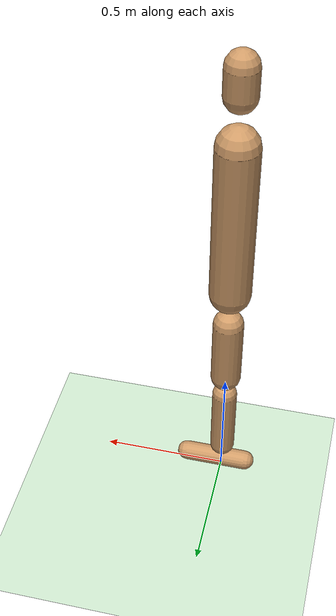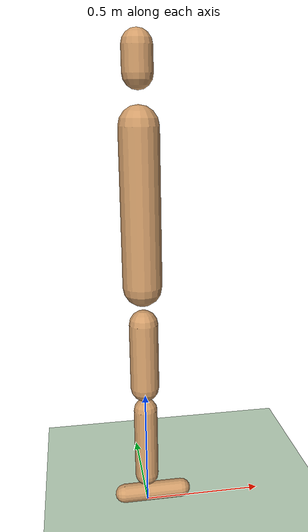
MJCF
<mujoco model="IDP_custom">
  <compiler angle="radian" coordinate="local" inertiafromgeom="false" />
  <default>
    <joint damping="0.0" />
    <geom contype="0" friction="0.0 0.0 0.0" />
  </default>
  <option gravity="0 0 -9.81" integrator="RK4" timestep="0.0083333333" />
  <size nstack="3000" nuser_actuator="10" nuserdata="100" />
  <asset>
    <texture builtin="gradient" height="100" rgb1=".4 .5 .6" rgb2="0 0 0" type="skybox" width="100" />
    <texture builtin="flat" height="1278" mark="cross" markrgb="1 1 1" name="texgeom" random="0.01" rgb1="0.8 0.6 0.4" rgb2="0.8 0.6 0.4" type="cube" width="127" />
    <texture builtin="checker" height="100" name="texplane" rgb1="0 0 0" rgb2="0.8 0.8 0.8" type="2d" width="100" />
    <material name="MatPlane" reflectance="0.5" shininess="1" specular="1" texrepeat="60 60" texture="texplane" />
    <material name="geom" texture="texgeom" texuniform="true" />
  </asset>
  <worldbody>
    <light cutoff="100" diffuse="1 1 1" dir="-0 0 -1.3" directional="true" exponent="1" pos="0 0 1.3" specular=".1 .1 .1" />
    <geom condim="3" friction="1 .1 .1" material="MatPlane" name="floor" pos="0 0 -0.03" rgba="0.8 0.9 0.8 1" size="20 20 0.125" type="plane" />
    <body name="foot" pos="0 0 0">
      <geom fromto="-0.1 0 0.04 0.15 0 0.04" name="foot" rgba="0.8 0.6 0.4 1.0" size="0.04" type="capsule" />
      <body name="shank" pos="0 0 0.13">
        <joint axis="0 -1 0" damping="0.0" limited="true" name="ank" pos="0 0 0" range="-1.0 1.0" stiffness="0.0" type="hinge" />
        <geom fromto="0 0 0 0 0 0.3050" name="shank" rgba="0.8 0.6 0.4 1.0" size="0.05" type="capsule" />
        <inertial diaginertia="1.073581 1.073581 0.001" mass="21.0865" pos="0 0 0.5160" />
        <body name="thigh" pos="0 0 0.411">
          <geom fromto="0 0 0 0 0 0.28" name="thigh" rgba="0.8 0.6 0.4 1.0" size="0.06" type="capsule" />
          <inertial diaginertia="1.073581 1.073581 0.001" mass="21.0865" pos="0 0 0.5160" />
          <body name="body" pos="0 0 0.44">
            <joint axis="0 -1 0" damping="0.0" limited="true" name="hip" pos="0 0 0" range="-2.1 2.1" stiffness="0.0" type="hinge" />
            <geom fromto="0 0 0 0 0 0.630" name="ubody" rgba="0.8 0.6 0.4 1.0" size="0.08" type="capsule" />
            <inertial diaginertia="1.432992 1.432992 0.001" mass="43.4886" pos="0 0 0.2941" />
            <body name="head" pos="0 0 .82">
              <geom fromto="0 0 0 0 0 0.1" name="head" rgba="0.8 0.6 0.4 1.0" size="0.06" type="capsule" />
              <inertial diaginertia="1.432992 1.432992 0.001" mass="43.4886" pos="0 0 0.2941" />
            </body>
          </body>
        </body>
      </body>
    </body>

  </worldbody>
  <actuator>
    <motor ctrllimited="true" ctrlrange="-0.5 1.0" gear="80" joint="ank" name="ank"/>
    <motor ctrllimited="true" ctrlrange="-1.0 1.0" gear="150" joint="hip" name="hip"/>
  </actuator>
</mujoco>
